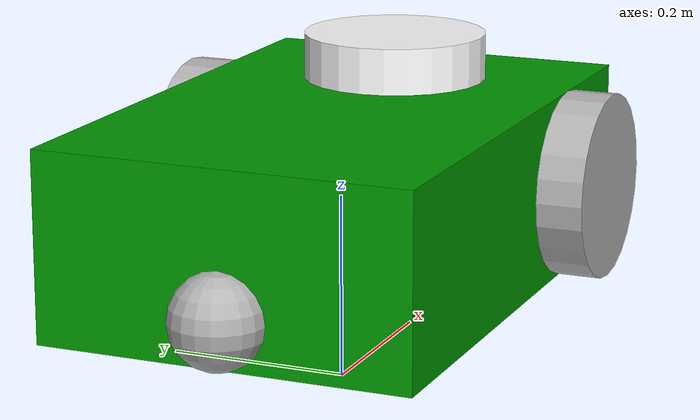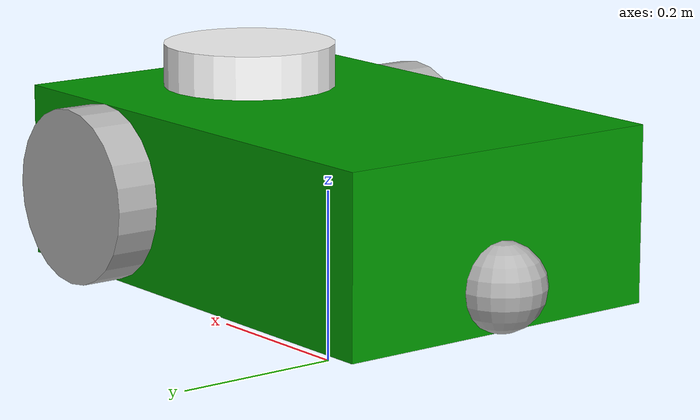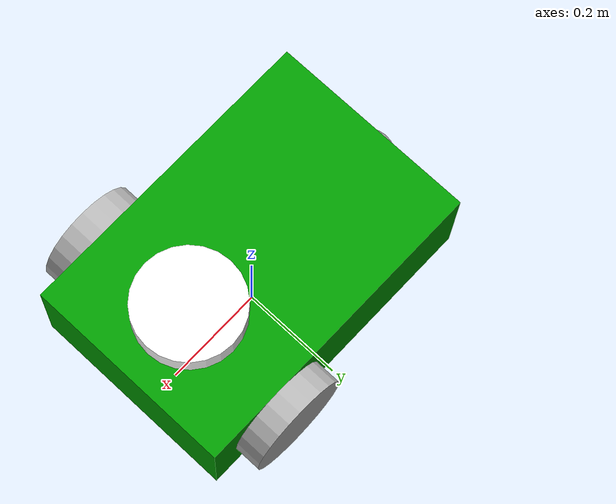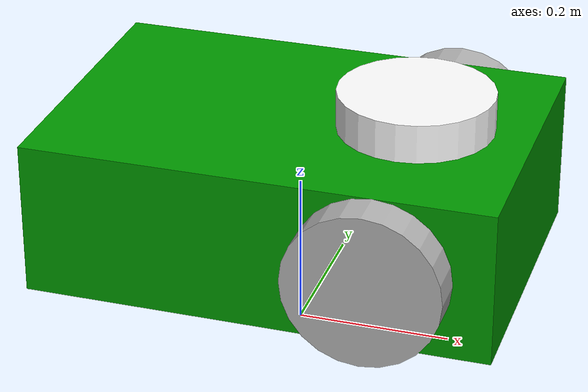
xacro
<?xml version="1.0"?>
<robot name="my_robot" xmlns:xacro="http://www.ros.org/wiki/xacro">

    <!-- Xacro Properties -->
    <xacro:property name="base_length" value="0.6" />
    <xacro:property name="base_width" value="0.4" />
    <xacro:property name="base_height" value="0.2" />
    <xacro:property name="wheel_radius" value="0.1" />
    <xacro:property name="wheel_length" value="0.05" />

    <!-- Materials -->
    <material name="green">
        <color rgba="0 0.6 0 1"/>
    </material>

    <material name="white">
        <color rgba="1 1 1 1"/>
    </material>

    <material name="gray">
        <color rgba="0.7 0.7 0.7 1"/>
    </material>

    <!-- Virtual ground frame -->
    <link name="base_footprint"/>

    <!-- Base -->
    <link name="base_link">
        <visual>
            <geometry>
                <box size="${base_length} ${base_width} ${base_height}"/>
            </geometry>
            <origin xyz="0 0 ${base_height / 2.0}" rpy="0 0 0"/>
            <material name="green"/>
        </visual>
    </link>

    <joint name="base_joint" type="fixed">
        <parent link="base_footprint"/>
        <child link="base_link"/>
        <origin xyz="0 0 ${wheel_radius}" rpy="0 0 0"/>
    </joint>

    <!-- Lidar -->
    <link name="lidar">
        <visual>
            <geometry>
                <cylinder radius="${wheel_radius}" length="${wheel_length}"/>
            </geometry>
            <origin xyz="0 0 ${wheel_length / 2.0}" rpy="0 0 0"/>
            <material name="white"/>
        </visual>
    </link>

    <joint name="base_lidar_joint" type="fixed">
        <parent link="base_link"/>
        <child link="lidar"/>
        <origin xyz="${base_length / 4.0} 0 ${base_height}" rpy="0 0 0"/>
    </joint>

    <!-- LEFT WHEEL -->
    <link name="left_wheel">
        <visual>
            <geometry>
                <cylinder radius="${wheel_radius}" length="${wheel_length}"/>
            </geometry>
            <origin xyz="0 0 0" rpy="0 0 0"/>
            <material name="gray"/>
        </visual>
    </link>

    <joint name="base_left_wheel_joint" type="continuous">
        <parent link="base_link"/>
        <child link="left_wheel"/>
        <origin xyz="${base_length / 4.0} ${base_width / 2.0 + wheel_length / 2.0} ${wheel_radius}" rpy="${-pi / 2.0} 0 0"/>
        <axis xyz="0 0 1"/>
    </joint>

    <!-- RIGHT WHEEL -->
    <link name="right_wheel">
        <visual>
            <geometry>
                <cylinder radius="${wheel_radius}" length="${wheel_length}"/>
            </geometry>
            <origin xyz="0 0 0" rpy="0 0 0"/>
            <material name="gray"/>
        </visual>
    </link>

    <joint name="base_right_wheel_joint" type="continuous">
        <parent link="base_link"/>
        <child link="right_wheel"/>
        <origin xyz="${base_length / 4.0} ${-base_width / 2.0 - wheel_length / 2.0} ${wheel_radius}" rpy="${-pi / 2.0} 0 0"/>
        <axis xyz="0 0 1"/>
    </joint>

    <!-- CASTER -->
    <link name="caster_wheel">
        <visual>
            <geometry>
                <sphere radius="${wheel_radius / 2.0}"/>
            </geometry>
            <origin xyz="0 0 0" rpy="0 0 0"/>
            <material name="gray"/>
        </visual>
    </link>

    <joint name="base_caster_wheel_joint" type="fixed">
        <parent link="base_link"/>
        <child link="caster_wheel"/>
        <origin xyz="${-base_length / 2.0} 0 ${wheel_radius / 2.0}" rpy="0 0 0"/>
    </joint>

</robot>
